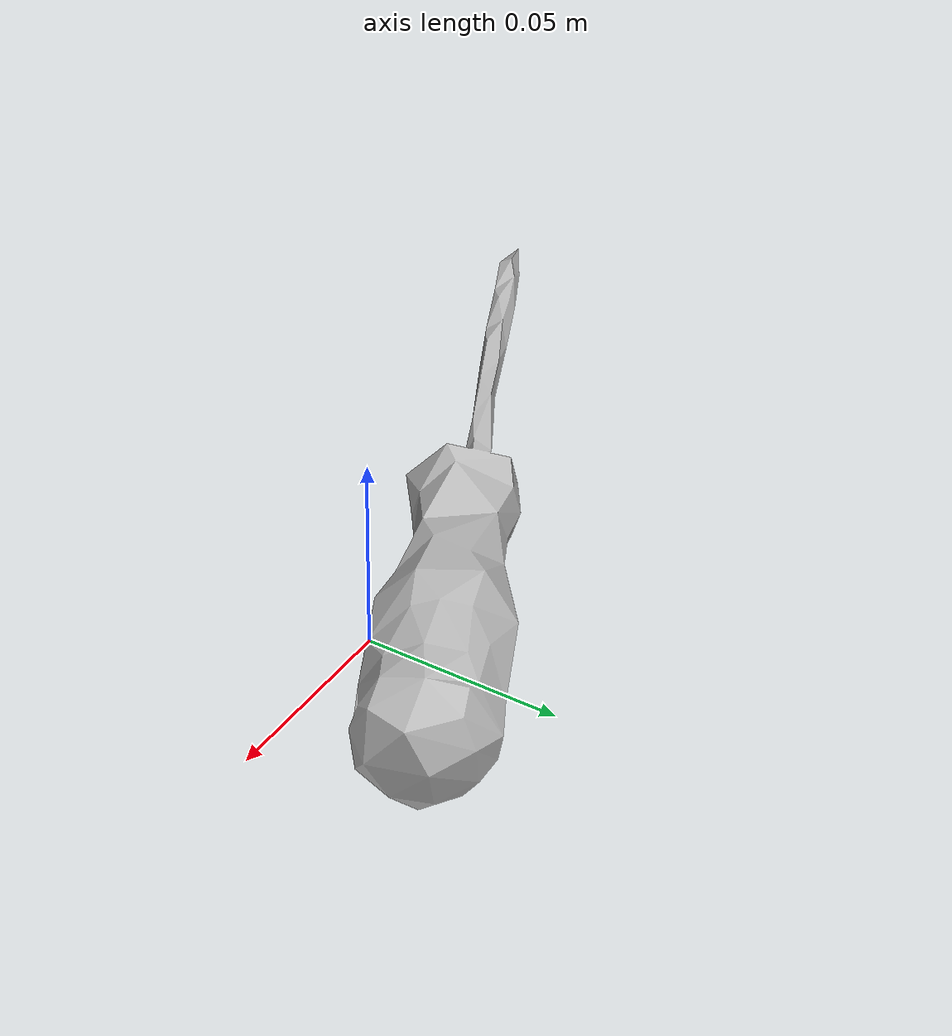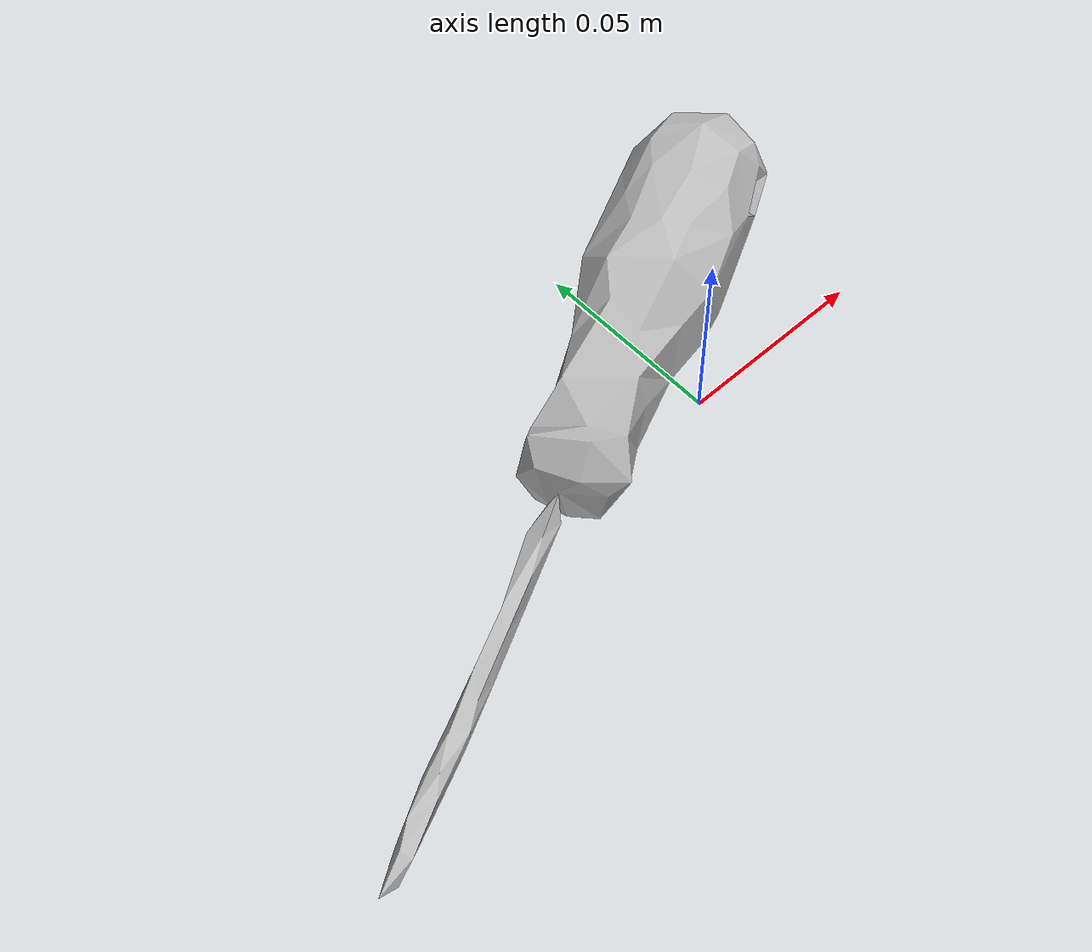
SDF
<?xml version='1.0'?>
<sdf version="1.4">
  <model name="043_phillips_screwdriver">
    <static>false</static>
    <link name="link">
      <inertial>
        <pose>-0.01397660737412893 0.013874377601725956 0.01560602450084127 1.8209049583777168 -1.3990692228447572 -1.3524610788786808</pose>
        <mass>0.011326228538925509</mass>
        <inertia>
          <ixx>2.4623743720616394e-05</ixx>
          <ixy>7.644740084434037e-22</ixy>
          <ixz>-7.8454007656543e-22</ixz>
          <iyy>2.46112465753e-05</iyy>
          <iyz>5.3362420527190844e-21</iyz>
          <izz>1.2976250880965993e-06</izz>
        </inertia>
      </inertial>
      <collision name="collision">
        <geometry>
          <mesh>
            <!-- Use a downsampled mesh for collisions -->
            <uri>model:///043_phillips_screwdriver/043_phillips_screwdriver_250_collision.stl</uri>
	        </mesh>
        </geometry>
        <surface>
      </surface>
      </collision>
      <visual name="visual">
        <geometry>
          <mesh>
            <uri>model:///043_phillips_screwdriver/textured.obj</uri>
	        </mesh>
        </geometry>
        <material>
          <script>
            <uri>model:///043_phillips_screwdriver/043_phillips_screwdriver.material</uri>
            <name>043_phillips_screwdriver</name>
          </script>
        </material>
      </visual>
    </link>
  </model>
</sdf>
